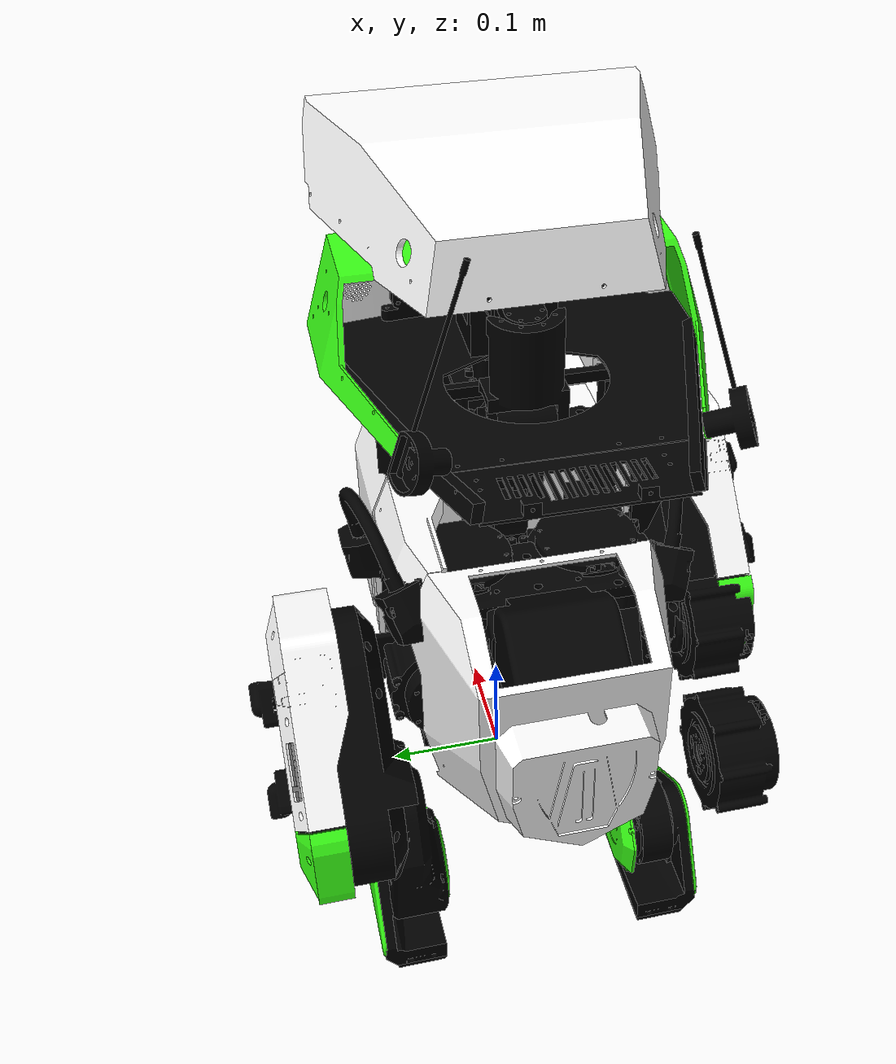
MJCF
<mujoco model="bdx-r">
  <compiler angle="radian" meshdir="meshes" autolimits="true" balanceinertia="true" />
  <default>
    <default class="bdx-r">
      <site group="5" rgba="1 0 0 1" size="0.01" />
      <default class="visual">
        <geom type="mesh" contype="0" conaffinity="0" group="2" density="0" />
      </default>
      <default class="collision">
        <geom type="capsule" group="3" material="bright_orange" contype="1" conaffinity="1" />
      </default>
    </default>
  </default>
  <asset>
    <texture type="skybox" builtin="gradient" rgb1="0.3 0.5 0.7" rgb2="0 0 0" width="512" height="512" />
    <texture name="texplane" type="2d" builtin="checker" rgb1=".2 .3 .4" rgb2=".1 0.15 0.2" width="512" height="512" mark="cross" markrgb=".8 .8 .8" />
    <material name="neon_green" rgba="0.22 1.0 0.08 1.0" />
    <material name="white" rgba="1.0 1.0 1.0 1.0" />
    <material name="black" rgba="0.0 0.0 0.0 1.0" />
    <material name="MatPlane" reflectance="0.5" texture="texplane" texrepeat="1 1" texuniform="true" />
    <material name="silver" rgba="0.75 0.75 0.75 1.0" />
    <material name="red" rgba="1 0 0 1" />
    <material name="bright_orange" rgba="1 0.65 0 0.2" />
    <mesh name="base_link" file="base_link.stl" scale="0.001 0.001 0.001" />
    <mesh name="Left_Hip_Yaw_Motor" file="Left_Hip_Yaw_Motor.stl" scale="0.001 0.001 0.001" />
    <mesh name="Right_Hip_Yaw_Motor" file="Right_Hip_Yaw_Motor.stl" scale="0.001 0.001 0.001" />
    <mesh name="Neck_Motor" file="Neck_Motor.stl" scale="0.001 0.001 0.001" />
    <mesh name="Neck" file="Neck.stl" scale="0.001 0.001 0.001" />
    <mesh name="Bottom_Cover" file="Bottom_Cover.stl" scale="0.001 0.001 0.001" />
    <mesh name="Right_Hip_Yaw_Support" file="Right_Hip_Yaw_Support.stl" scale="0.001 0.001 0.001" />
    <mesh name="Left_Hip_Yaw_Support" file="Left_Hip_Yaw_Support.stl" scale="0.001 0.001 0.001" />
    <mesh name="Base_Top_Clamp" file="Base_Top_Clamp.stl" scale="0.001 0.001 0.001" />
    <mesh name="Head_Pitch_Motor" file="Head_Pitch_Motor.stl" scale="0.001 0.001 0.001" />
    <mesh name="Left_Holder" file="Left_Holder.stl" scale="0.001 0.001 0.001" />
    <mesh name="Top_Base_Frame" file="Top_Base_Frame.stl" scale="0.001 0.001 0.001" />
    <mesh name="Head_Pitch_Motor_Support" file="Head_Pitch_Motor_Support.stl" scale="0.001 0.001 0.001" />
    <mesh name="Head_Yaw_Motor" file="Head_Yaw_Motor.stl" scale="0.001 0.001 0.001" />
    <mesh name="Head_Roll_Connector" file="Head_Roll_Connector.stl" scale="0.001 0.001 0.001" />
    <mesh name="Head_Roll_Motor" file="Head_Roll_Motor.stl" scale="0.001 0.001 0.001" />
    <mesh name="Head_Roll_Motor_Mount" file="Head_Roll_Motor_Mount.stl" scale="0.001 0.001 0.001" />
    <mesh name="Front_Support" file="Front_Support.stl" scale="0.001 0.001 0.001" />
    <mesh name="Right_Cable_Support" file="Right_Cable_Support.stl" scale="0.001 0.001 0.001" />
    <mesh name="Head_Base_Plate" file="Head_Base_Plate.stl" scale="0.001 0.001 0.001" />
    <mesh name="Right_Eye" file="Right_Eye.stl" scale="0.001 0.001 0.001" />
    <mesh name="Front_Cover" file="Front_Cover.stl" scale="0.001 0.001 0.001" />
    <mesh name="Right_Head_Support" file="Right_Head_Support.stl" scale="0.001 0.001 0.001" />
    <mesh name="Right_Front_Cover" file="Right_Front_Cover.stl" scale="0.001 0.001 0.001" />
    <mesh name="Left_Eye" file="Left_Eye.stl" scale="0.001 0.001 0.001" />
    <mesh name="Right_Holder" file="Right_Holder.stl" scale="0.001 0.001 0.001" />
    <mesh name="Left_Head_Support" file="Left_Head_Support.stl" scale="0.001 0.001 0.001" />
    <mesh name="Left_Front_Cover" file="Left_Front_Cover.stl" scale="0.001 0.001 0.001" />
    <mesh name="Battery_Holder" file="Battery_Holder.stl" scale="0.001 0.001 0.001" />
    <mesh name="Left_Cable_Support" file="Left_Cable_Support.stl" scale="0.001 0.001 0.001" />
    <mesh name="Battery" file="Battery.stl" scale="0.001 0.001 0.001" />
    <mesh name="Back_Support" file="Back_Support.stl" scale="0.001 0.001 0.001" />
    <mesh name="Rear_Cover" file="Rear_Cover.stl" scale="0.001 0.001 0.001" />
    <mesh name="Face" file="Face.stl" scale="0.001 0.001 0.001" />
    <mesh name="Left_Hip_Top_Holder" file="Left_Hip_Top_Holder.stl" scale="0.001 0.001 0.001" />
    <mesh name="Left_Hip_Roll_Motor" file="Left_Hip_Roll_Motor.stl" scale="0.001 0.001 0.001" />
    <mesh name="Left_Hip_Roll_Connector" file="Left_Hip_Roll_Connector.stl" scale="0.001 0.001 0.001" />
    <mesh name="Left_Hip_Pitch_Motor" file="Left_Hip_Pitch_Motor.stl" scale="0.001 0.001 0.001" />
    <mesh name="Left_Upper_Leg" file="Left_Upper_Leg.stl" scale="0.001 0.001 0.001" />
    <mesh name="Left_Hip_Bottom_Holder" file="Left_Hip_Bottom_Holder.stl" scale="0.001 0.001 0.001" />
    <mesh name="Left_Knee_Motor" file="Left_Knee_Motor.stl" scale="0.001 0.001 0.001" />
    <mesh name="Left_Lower_Leg" file="Left_Lower_Leg.stl" scale="0.001 0.001 0.001" />
    <mesh name="Left_Ankle_Cover" file="Left_Ankle_Cover.stl" scale="0.001 0.001 0.001" />
    <mesh name="Left_Ankle_Motor" file="Left_Ankle_Motor.stl" scale="0.001 0.001 0.001" />
    <mesh name="Left_Foot" file="Left_Foot.stl" scale="0.001 0.001 0.001" />
    <mesh name="Left_Foot_Pad" file="Left_Foot_Pad.stl" scale="0.001 0.001 0.001" />
    <mesh name="Left_Foot_Cover" file="Left_Foot_Cover.stl" scale="0.001 0.001 0.001" />
    <mesh name="Left_Upper_Leg_Cover" file="Left_Upper_Leg_Cover.stl" scale="0.001 0.001 0.001" />
    <mesh name="Left_Lower_Leg_Cover" file="Left_Lower_Leg_Cover.stl" scale="0.001 0.001 0.001" />
    <mesh name="Left_Upper_Leg_Detail" file="Left_Upper_Leg_Detail.stl" scale="0.001 0.001 0.001" />
    <mesh name="Camera_Mount" file="Camera_Mount.stl" scale="0.001 0.001 0.001" />
    <mesh name="Rear_Antenna_Box" file="Rear_Antenna_Box.stl" scale="0.001 0.001 0.001" />
    <mesh name="Right_Hip_Top_Holder" file="Right_Hip_Top_Holder.stl" scale="0.001 0.001 0.001" />
    <mesh name="Right_Hip_Roll_Motor" file="Right_Hip_Roll_Motor.stl" scale="0.001 0.001 0.001" />
    <mesh name="Right_Hip_Roll_Connector" file="Right_Hip_Roll_Connector.stl" scale="0.001 0.001 0.001" />
    <mesh name="Right_Hip_Bottom_Holder" file="Right_Hip_Bottom_Holder.stl" scale="0.001 0.001 0.001" />
    <mesh name="Right_Hip_Pitch_Motor" file="Right_Hip_Pitch_Motor.stl" scale="0.001 0.001 0.001" />
    <mesh name="Right_Upper_Leg" file="Right_Upper_Leg.stl" scale="0.001 0.001 0.001" />
    <mesh name="Right_Knee_Motor" file="Right_Knee_Motor.stl" scale="0.001 0.001 0.001" />
    <mesh name="Right_Lower_Leg" file="Right_Lower_Leg.stl" scale="0.001 0.001 0.001" />
    <mesh name="Right_Ankle_Motor" file="Right_Ankle_Motor.stl" scale="0.001 0.001 0.001" />
    <mesh name="Right_Foot" file="Right_Foot.stl" scale="0.001 0.001 0.001" />
    <mesh name="Right_Foot_Pad" file="Right_Foot_Pad.stl" scale="0.001 0.001 0.001" />
    <mesh name="Right_Foot_Cover" file="Right_Foot_Cover.stl" scale="0.001 0.001 0.001" />
    <mesh name="Right_Upper_Leg_Cover" file="Right_Upper_Leg_Cover.stl" scale="0.001 0.001 0.001" />
    <mesh name="Right_Lower_Leg_Cover" file="Right_Lower_Leg_Cover.stl" scale="0.001 0.001 0.001" />
    <mesh name="Right_Upper_Leg_Detail" file="Right_Upper_Leg_Detail.stl" scale="0.001 0.001 0.001" />
    <mesh name="Right_Ankle_Cover" file="Right_Ankle_Cover.stl" scale="0.001 0.001 0.001" />
    <mesh name="Left_Top_Cover" file="Left_Top_Cover.stl" scale="0.001 0.001 0.001" />
    <mesh name="Right_Top_Cover" file="Right_Top_Cover.stl" scale="0.001 0.001 0.001" />
    <mesh name="imu_mount" file="imu_mount.stl" scale="0.001 0.001 0.001" />
    <mesh name="imu" file="imu.stl" scale="0.001 0.001 0.001" />
    <mesh name="Orin_Nano_Case" file="Orin_Nano_Case.stl" scale="0.001 0.001 0.001" />
    <mesh name="Right_Ear_Holder" file="Right_Ear_Holder.stl" scale="0.001 0.001 0.001" />
    <mesh name="Right_Ear_Motor" file="Right_Ear_Motor.stl" scale="0.001 0.001 0.001" />
    <mesh name="Right_Ear" file="Right_Ear.stl" scale="0.001 0.001 0.001" />
    <mesh name="Left_Ear_Holder" file="Left_Ear_Holder.stl" scale="0.001 0.001 0.001" />
    <mesh name="Left_Ear_Motor" file="Left_Ear_Motor.stl" scale="0.001 0.001 0.001" />
    <mesh name="Left_Ear" file="Left_Ear.stl" scale="0.001 0.001 0.001" />
    <mesh name="Rear_Head_Cover" file="Rear_Head_Cover.stl" scale="0.001 0.001 0.001" />
    <mesh name="Rear_Head_Plate" file="Rear_Head_Plate.stl" scale="0.001 0.001 0.001" />
  </asset>
  <worldbody>
    <body name="base_link" pos="0 0 0.25" childclass="bdx-r">
      <inertial pos="0.0285257 8.41039e-06 0.0509918" mass="1.15887" fullinertia="0.005714 0.007914 0.004476 1e-05 0.000772 5e-06" />
      <geom class="visual" mesh="base_link" material="black" />
      <body name="Left_Hip_Yaw_Motor" pos="-0.032622 0.068801 0.109598">
        <inertial pos="0.0452137 -0.0187317 0.0212523" mass="0.910444" fullinertia="0.000918 0.00088 0.001215 -1e-06 1e-06 6e-06" />
        <geom class="visual" mesh="Left_Hip_Yaw_Motor" material="black" pos="0.032622 -0.068801 -0.109598" />
        <body name="Left_Hip_Top_Holder" pos="0.04527 -0.018751 -0.0025">
          <joint name="Left_Hip_Yaw" axis="0.0 0.0 1.0" range="-0.2617993877991494 0.2617993877991494" />
          <inertial pos="0.00162017 0.00319912 -0.0113672" mass="0.0821127" fullinertia="3.3e-05 3.5e-05 5.6e-05 -1e-06 3e-06 1e-06" />
          <geom class="visual" mesh="Left_Hip_Top_Holder" material="black" pos="-0.012648 -0.05005 -0.107098" />
          <body name="Left_Hip_Roll_Motor" pos="0.0155 0.031251 -0.017274">
            <inertial pos="-0.02116 -0.0187285 -0.0452265" mass="0.906987" fullinertia="0.001212 0.000876 0.000914 -6e-06 1e-06 1e-06" />
            <geom class="visual" mesh="Left_Hip_Roll_Motor" material="black" pos="-0.028148 -0.081301 -0.089824" />
            <body name="Left_Hip_Roll_Connector" pos="0.0025 -0.018751 -0.04527">
              <joint name="Left_Hip_Roll" axis="-1.0 0.0 0.0" range="-0.2617993877991494 0.3490658503988659" />
              <inertial pos="0.0023355 0.0293204 9.42159e-05" mass="0.0981459" fullinertia="0.000108 2.4e-05 0.0001 1.2e-05 0 -0" />
              <geom class="visual" mesh="Left_Hip_Roll_Connector" material="black" pos="-0.030648 -0.06255 -0.044554" />
              <body name="Left_Hip_Pitch_Motor" pos="-0.008646 0.07125 0.001341">
                <joint name="Left_Hip_Pitch" axis="0.0 -1.0 0.0" range="-1.0471975511965976 0.6981317007977318" />
                <inertial pos="5.59296e-05 0.0237521 -1.95587e-05" mass="0.910452" fullinertia="0.000918 0.001215 0.00088 -1e-06 -1e-06 -6e-06" />
                <geom class="visual" mesh="Left_Hip_Pitch_Motor" material="black" pos="-0.022002 -0.1338 -0.045895" />
                <body name="Left_Upper_Leg" pos="-0.018752 0.0025 0.04527">
                  <inertial pos="-0.0242746 0.0172653 -0.0787967" mass="0.565554" fullinertia="0.001455 0.00232 0.001546 -3.2e-05 -0.00053 -9e-06" />
                  <geom class="visual" mesh="Left_Upper_Leg" material="black" pos="-0.00325 -0.1363 -0.091165" />
                  <body name="Left_Knee_Motor" pos="-0.106013 0 -0.141269">
                    <inertial pos="0.045479 0.0212521 0.0183467" mass="0.910452" fullinertia="0.00088 0.001215 0.000918 6e-06 1e-06 -1e-06" />
                    <geom class="visual" mesh="Left_Knee_Motor" material="black" pos="0.102763 -0.1363 0.050104" />
                    <body name="Left_Lower_Leg" pos="0.045459 -0.0025 0.018291">
                      <joint name="Left_Knee" axis="0.0 1.0 0.0" range="-0.9599310885968813 1.3089969389957472" />
                      <inertial pos="0.0122832 -0.0211551 -0.0653918" mass="0.386853" fullinertia="0.00123 0.001535 0.000412 2e-05 0.000321 -6.6e-05" />
                      <geom class="visual" mesh="Left_Lower_Leg" material="black" pos="0.057304 -0.1338 0.031813" />
                      <body name="Left_Ankle_Cover" pos="0.072419 -0.045377 -0.097579">
                        <inertial pos="-0.0272704 -0.00635427 -0.0324997" mass="0.0142021" fullinertia="7e-06 1.5e-05 7e-06 -0 -0 -0" />
                        <geom class="visual" mesh="Left_Ankle_Cover" material="neon_green" pos="-0.015115 -0.088423 0.129392" />
                      </body>
                      <body name="Left_Ankle_Motor" pos="0.009131 -0.00934 -0.124166">
                        <inertial pos="0.0365342 -0.0168978 -0.00724371" mass="0.43363" fullinertia="0.000297 0.000423 0.000296 -1e-06 6e-06 -2e-06" />
                        <geom class="visual" mesh="Left_Ankle_Motor" material="black" pos="0.048173 -0.12446 0.155979" />
                        <body name="Left_Foot" pos="0.036018 0.004 -0.005913">
                          <joint name="Left_Ankle" axis="-0.0 -1.0 -0.0" range="-0.785 1.2217304763960306" />
                          <inertial pos="0.02614 -0.00466554 -0.039192" mass="0.253739" fullinertia="0.000195 0.000667 0.0006 1.9e-05 2.5e-05 -4.5e-05" />
                          <geom class="visual" mesh="Left_Foot" material="black" pos="0.012155 -0.12846 0.161892" />
                          <body name="Left_Foot_Pad" pos="0.222432 -0.025632 0.027724">
                            <inertial pos="-0.195252 0.00765129 -0.0993291" mass="0.111203" fullinertia="1.6e-05 0.000254 0.000264 0 0 -0" />
                            <geom class="visual" mesh="Left_Foot_Pad" material="black" pos="-0.210277 -0.102828 0.134168" />
                            <geom class="collision" name="left_foot_collision1" size="0.005" fromto="-0.2678 -0.0065 -0.1087  -0.1228 -0.0065 -0.1087" />
                            <geom class="collision" name="left_foot_collision2" size="0.005" fromto="-0.2628 -0.0025 -0.1087  -0.1278 -0.0025 -0.1087" />
                            <geom class="collision" name="left_foot_collision3" size="0.005" fromto="-0.2578  0.0015 -0.1087  -0.1328  0.0015 -0.1087" />
                            <geom class="collision" name="left_foot_collision4" size="0.005" fromto="-0.2578  0.0055 -0.1087  -0.1328  0.0055 -0.1087" />
                            <geom class="collision" name="left_foot_collision5" size="0.005" fromto="-0.2578  0.0095 -0.1087  -0.1328  0.0095 -0.1087" />
                            <geom class="collision" name="left_foot_collision6" size="0.005" fromto="-0.2628  0.0135 -0.1087  -0.1278  0.0135 -0.1087" />
                            <geom class="collision" name="left_foot_collision7" size="0.005" fromto="-0.2678  0.0175 -0.1087  -0.1228  0.0175 -0.1087" />
                          </body>
                          <body name="Left_Foot_Cover" pos="0.102636 0.0135 -0.048903">
                            <inertial pos="-0.053452 -0.0143058 0.0213113" mass="0.0375237" fullinertia="6.4e-05 0.000132 0.000116 2.4e-05 8e-06 5e-06" />
                            <geom class="visual" mesh="Left_Foot_Cover" material="neon_green" pos="-0.090481 -0.14196 0.210795" />
                          </body>
                          <site name="left_foot" pos="0.035 -0.025682 -0.071" size="0.01" rgba="1 0 0 1" />
                        </body>
                      </body>
                    </body>
                  </body>
                  <body name="Left_Upper_Leg_Cover" pos="0.058901 0.0465 -0.075069">
                    <inertial pos="-0.0409403 0.000936835 0.0389855" mass="0.0636117" fullinertia="9e-05 0.000296 0.000237 9e-06 -8e-06 5e-06" />
                    <geom class="visual" mesh="Left_Upper_Leg_Cover" material="white" pos="-0.062151 -0.1828 -0.016096" />
                    <body name="Left_Upper_Leg_Detail" pos="0.022141 0.011874 0.129718">
                      <inertial pos="-0.140135 -0.00116722 -0.114257" mass="0.0049676" fullinertia="1e-06 2e-06 1e-06 0 0 0" />
                      <geom class="visual" mesh="Left_Upper_Leg_Detail" pos="-0.084292 -0.194674 -0.145814" />
                    </body>
                  </body>
                  <body name="Left_Lower_Leg_Cover" pos="-0.10624 0.0465 -0.11194">
                    <inertial pos="0.0656069 -0.000288225 -0.0209171" mass="0.0918022" fullinertia="0.0001 0.000359 0.00029 9e-06 -5.3e-05 -3e-06" />
                    <geom class="visual" mesh="Left_Lower_Leg_Cover" material="neon_green" pos="0.10299 -0.1828 0.020775" />
                  </body>
                </body>
              </body>
            </body>
            <body name="Left_Hip_Bottom_Holder" pos="0 0 -0.09054">
              <inertial pos="-0.0132831 -0.0263267 -0.00296785" mass="0.060065" fullinertia="2.2e-05 2.5e-05 3.8e-05 -0 -3e-06 -0" />
              <geom class="visual" mesh="Left_Hip_Bottom_Holder" material="black" pos="-0.028148 -0.081301 0.000716" />
            </body>
          </body>
        </body>
      </body>
      <body name="Right_Hip_Yaw_Motor" pos="-0.032622 -0.068701 0.109598">
        <inertial pos="0.0453267 0.0187317 0.0212523" mass="0.910444" fullinertia="0.000918 0.00088 0.001215 -1e-06 -1e-06 -6e-06" />
        <geom class="visual" mesh="Right_Hip_Yaw_Motor" material="black" pos="0.032622 0.068701 -0.109598" />
        <body name="Right_Hip_Top_Holder" pos="0.04527 0.018751 -0.0025">
          <joint name="Right_Hip_Yaw" axis="0.0 0.0 1.0" range="-0.2617993877991494 0.2617993877991494" />
          <inertial pos="0.00162017 -0.00319911 -0.0131072" mass="0.0821127" fullinertia="3.3e-05 3.5e-05 5.6e-05 1e-06 3e-06 -1e-06" />
          <geom class="visual" mesh="Right_Hip_Top_Holder" material="black" pos="-0.012648 0.04995 -0.107098" />
          <body name="Right_Hip_Roll_Motor" pos="0.0155 0.006251 -0.019014">
            <inertial pos="-0.02116 -0.0187735 -0.0452265" mass="0.906987" fullinertia="0.001212 0.000876 0.000914 6e-06 1e-06 -1e-06" />
            <geom class="visual" mesh="Right_Hip_Roll_Motor" material="black" pos="-0.028148 0.043699 -0.088084" />
            <body name="Right_Hip_Roll_Connector" pos="0.0025 -0.018751 -0.04527">
              <joint name="Right_Hip_Roll" axis="-1.0 0.0 0.0" range="-0.3490658503988659 0.2617993877991494" />
              <inertial pos="0.0023355 -0.0293203 9.42157e-05" mass="0.0981459" fullinertia="0.000108 2.4e-05 0.0001 -1.2e-05 0 0" />
              <geom class="visual" mesh="Right_Hip_Roll_Connector" material="black" pos="-0.030648 0.06245 -0.042814" />
              <body name="Right_Hip_Pitch_Motor" pos="-0.008646 -0.07125 0.001341">
                <joint name="Right_Hip_Pitch" axis="0.0 1.0 0.0" range="-0.6981317007977318 1.0471975511965976" />
                <inertial pos="5.59947e-05 -0.0237519 -1.92588e-05" mass="0.910444" fullinertia="0.000918 0.001215 0.00088 1e-06 -1e-06 6e-06" />
                <geom class="visual" mesh="Right_Hip_Pitch_Motor" material="black" pos="-0.022002 0.1337 -0.044155" />
                <body name="Right_Upper_Leg" pos="-0.018752 -0.0025 0.04527">
                  <inertial pos="-0.024281 -0.0172422 -0.0787691" mass="0.565588" fullinertia="0.001453 0.00232 0.001545 3.1e-05 -0.00053 9e-06" />
                  <geom class="visual" mesh="Right_Upper_Leg" material="black" pos="-0.00325 0.1362 -0.089425" />
                  <body name="Right_Knee_Motor" pos="-0.078844 0 -0.07752">
                    <inertial pos="0.0183097 -0.0212519 -0.0454022" mass="0.910444" fullinertia="0.00088 0.001215 0.000918 -6e-06 1e-06 1e-06" />
                    <geom class="visual" mesh="Right_Knee_Motor" material="black" pos="0.075594 0.1362 -0.011905" />
                    <body name="Right_Lower_Leg" pos="0.01829 0.0025 -0.045458">
                      <joint name="Right_Knee" axis="-0.0 -1.0 -0.0" range="-1.3089969389957472 0.9599310885968813" />
                      <inertial pos="0.0122832 0.0211551 -0.0653918" mass="0.386853" fullinertia="0.00123 0.001535 0.000412 -2e-05 0.000321 6.6e-05" />
                      <geom class="visual" mesh="Right_Lower_Leg" material="black" pos="0.057304 0.1337 0.033553" />
                      <body name="Right_Ankle_Motor" pos="0.044717 0.00934 -0.093581">
                        <inertial pos="0.000948222 0.0168978 -0.0378287" mass="0.43363" fullinertia="0.000297 0.000423 0.000296 1e-06 6e-06 2e-06" />
                        <geom class="visual" mesh="Right_Ankle_Motor" material="black" pos="0.012587 0.12436 0.127134" />
                        <body name="Right_Foot" pos="0.000432 -0.004 -0.036498">
                          <joint name="Right_Ankle" axis="0.0 1.0 0.0" range="-1.2217304763960306 0.785" />
                          <inertial pos="0.02614 0.00466555 -0.039192" mass="0.253739" fullinertia="0.000195 0.000667 0.0006 -1.9e-05 2.5e-05 4.5e-05" />
                          <geom class="visual" mesh="Right_Foot" material="black" pos="0.012155 0.12836 0.163632" />
                          <body name="Right_Foot_Pad" pos="0.10668 0.018025 -0.059278">
                            <inertial pos="-0.0794999 4.53063e-07 -0.0123271" mass="0.111203" fullinertia="1.6e-05 0.000254 0.000264 -0 0 0" />
                            <geom class="visual" mesh="Right_Foot_Pad" material="black" pos="-0.094525 0.110335 0.22291" />
                            <geom class="collision" name="right_foot_collision1" size="0.005" fromto="-0.152  0.014 -0.02  -0.007  0.014 -0.02" />
                            <geom class="collision" name="right_foot_collision2" size="0.005" fromto="-0.147  0.01  -0.02  -0.012  0.01  -0.02" />
                            <geom class="collision" name="right_foot_collision3" size="0.005" fromto="-0.142  0.006 -0.02  -0.017  0.006 -0.02" />
                            <geom class="collision" name="right_foot_collision4" size="0.005" fromto="-0.142  0.002 -0.02  -0.017  0.002 -0.02" />
                            <geom class="collision" name="right_foot_collision5" size="0.005" fromto="-0.142 -0.002 -0.02  -0.017 -0.002 -0.02" />
                            <geom class="collision" name="right_foot_collision6" size="0.005" fromto="-0.147 -0.006 -0.02  -0.012 -0.006 -0.02" />
                            <geom class="collision" name="right_foot_collision7" size="0.005" fromto="-0.152 -0.01  -0.02  -0.007 -0.01  -0.02" />
                          </body>
                          <body name="Right_Foot_Cover" pos="-0.041752 -0.0135 -0.042544">
                            <inertial pos="0.09107 0.0144107 0.015231" mass="0.0375241" fullinertia="6.9e-05 0.000136 0.000117 -2.5e-05 7e-06 -7e-06" />
                            <geom class="visual" mesh="Right_Foot_Cover" material="neon_green" pos="0.053907 0.14186 0.206176" />
                          </body>
                          <site name="right_foot" pos="0.035 0.018025 -0.071" size="0.01" rgba="1 0 0 1" />
                        </body>
                      </body>
                      <body name="Right_Ankle_Cover" pos="0.017878 0.045377 -0.162578">
                        <inertial pos="0.0272706 0.00635428 0.0324993" mass="0.0142021" fullinertia="7e-06 1.5e-05 7e-06 0 -0 0" />
                        <geom class="visual" mesh="Right_Ankle_Cover" material="neon_green" pos="0.039426 0.088323 0.196131" />
                      </body>
                    </body>
                  </body>
                  <body name="Right_Upper_Leg_Cover" pos="0.058901 -0.0465 -0.075069">
                    <inertial pos="-0.0409403 -0.00093683 0.0389855" mass="0.0636117" fullinertia="9e-05 0.000296 0.000237 -9e-06 -8e-06 -5e-06" />
                    <geom class="visual" mesh="Right_Upper_Leg_Cover" material="white" pos="-0.062151 0.1827 -0.014356" />
                    <body name="Right_Upper_Leg_Detail" pos="0.022141 -0.011774 0.127978">
                      <inertial pos="-0.137951 0.000535076 -0.11224" mass="0.0049676" fullinertia="1e-06 2e-06 1e-06 0 0 0" />
                      <geom class="visual" mesh="Right_Upper_Leg_Detail" material="neon_green" pos="-0.084292 0.194474 -0.142334" />
                    </body>
                  </body>
                  <body name="Right_Lower_Leg_Cover" pos="-0.10624 -0.0465 -0.11194">
                    <inertial pos="0.0636909 -0.00605024 -0.0174859" mass="0.0493738" fullinertia="5.4e-05 0.000184 0.000145 -2e-06 -2.8e-05 4e-06" />
                    <geom class="visual" mesh="Right_Lower_Leg_Cover" material="neon_green" pos="0.10299 0.1827 0.022515" />
                  </body>
                </body>
              </body>
            </body>
            <body name="Right_Hip_Bottom_Holder" pos="0 0 -0.09054">
              <inertial pos="-0.0132831 -0.0111753 -0.00296785" mass="0.060065" fullinertia="2.2e-05 2.5e-05 3.8e-05 0 -3e-06 0" />
              <geom class="visual" mesh="Right_Hip_Bottom_Holder" material="black" pos="-0.028148 0.043699 0.002456" />
            </body>
          </body>
        </body>
      </body>
      <body name="Neck_Motor" pos="0.132886 -0.0164 0.129795">
        <inertial pos="-0.0308996 0.0168978 0.0207154" mass="0.429402" fullinertia="0.000296 0.000419 0.00029 -2e-06 3e-06 -1e-06" />
        <geom class="visual" mesh="Neck_Motor" material="black" pos="-0.132886 0.0164 -0.129795" />
        <body name="Neck" pos="-0.030954 -0.004 0.019342">
          <joint name="Neck_Pitch" axis="0.0 1.0 -0.0" range="-0.3490658503988659 0.8726646259971648" />
          <inertial pos="-0.0234567 0.00438569 0.0565731" mass="0.2" fullinertia="0.00022 0.00028 0.000123 1.3e-05 9.1e-05 -3.4e-05" />
          <geom class="visual" mesh="Neck" material="black" pos="-0.101932 0.0204 -0.149137" />
          <body name="Head_Pitch_Motor" pos="-0.047284 -0.00566 0.100231">
            <inertial pos="-0.017591 0.0172458 0.0112969" mass="0.214076" fullinertia="8.9e-05 7.9e-05 8.9e-05 0 -0 -1e-06" />
            <geom class="visual" mesh="Head_Pitch_Motor" material="black" pos="-0.054648 0.02606 -0.249368" />
            <body name="Head_Pitch_Motor_Support" pos="-0.017501 0 0.011149">
              <joint name="Head_Pitch" axis="0.0 1.0 0.0" range="-1.0471975511965976 0.5235987755982988" />
              <inertial pos="-0.00964845 0.013235 0.0430231" mass="0.044643" fullinertia="5e-05 4.2e-05 1.9e-05 2e-06 8e-06 -8e-06" />
              <geom class="visual" mesh="Head_Pitch_Motor_Support" material="black" pos="-0.037147 0.02606 -0.260517" />
              <body name="Head_Yaw_Motor" pos="-0.017969 0.027051 0.074557">
                <inertial pos="0.0191595 -0.00811371 -0.0172459" mass="0.214075" fullinertia="8.9e-05 9e-05 7.9e-05 -0 -0 -1e-06" />
                <geom class="visual" mesh="Head_Yaw_Motor" material="black" pos="-0.019178 -0.000991 -0.335074" />
                <body name="Head_Roll_Connector" pos="0.01917 -0.007941 0">
                  <joint name="Head_Yaw" axis="0.0 0.0 -1.0" range="-0.8726646259971648 0.8726646259971648" />
                  <inertial pos="0.0211308 -4.18231e-08 0.00296739" mass="0.026235" fullinertia="4e-06 1e-05 1e-05 -0 2e-06 0" />
                  <geom class="visual" mesh="Head_Roll_Connector" material="black" pos="-0.038348 0.00695 -0.335074" />
                  <body name="Head_Roll_Motor" pos="0.043997 0 -0.009">
                    <joint name="Head_Roll" axis="-1.0 0.0 0.0" range="-0.5235987755982988 0.5235987755982988" />
                    <inertial pos="0.0172461 -0.000172653 -1.03471e-05" mass="0.214075" fullinertia="7.9e-05 9e-05 8.9e-05 1e-06 0 -0" />
                    <geom class="visual" mesh="Head_Roll_Motor" material="black" pos="-0.082345 0.00695 -0.326074" />
                    <body name="Head_Roll_Motor_Mount" pos="0 0.01917 -0.00794">
                      <inertial pos="0.014234 -0.0200143 -0.0108146" mass="0.0606934" fullinertia="3.3e-05 2e-05 4.5e-05 0 2e-06 1e-06" />
                      <geom class="visual" mesh="Head_Roll_Motor_Mount" material="black" pos="-0.082345 -0.01222 -0.318134" />
                      <body name="Head_Base_Plate" pos="0.0021 -0.046722 -0.021495">
                        <inertial pos="-0.0314072 0.0267588 -0.000999742" mass="0.241677" fullinertia="0.001541 0.000994 0.002535 0 -0 0" />
                        <geom class="visual" mesh="Head_Base_Plate" material="black" pos="-0.084445 0.034502 -0.296639" />
                        <body name="Right_Eye" pos="0.058598 -0.056479 0">
                          <inertial pos="0.00526735 0.0221071 0.0207912" mass="0.0111037" fullinertia="5e-06 3e-06 3e-06 -0 -0 -0" />
                          <geom class="visual" mesh="Right_Eye" material="black" pos="-0.143043 0.090981 -0.296639" />
                        </body>
                        <body name="Right_Head_Support" pos="-0.123278 -0.074652 0">
                          <inertial pos="0.0116378 -0.00188178 0.00732325" mass="0.0204368" fullinertia="7e-06 6.7e-05 7.3e-05 2.1e-05 1e-06 -1e-06" />
                          <geom class="visual" mesh="Right_Head_Support" material="black" pos="0.038833 0.109154 -0.296639" />
                          <body name="Right_Front_Cover" pos="0.202885 -0.027984 0.096418">
                            <inertial pos="-0.0520371 0.0380541 -0.0481267" mass="0.0536057" fullinertia="0.000146 0.000117 0.000202 -2.8e-05 -2.9e-05 -4e-05" />
                            <geom class="visual" mesh="Right_Front_Cover" material="neon_green" pos="-0.164052 0.137138 -0.393057" />
                          </body>
                        </body>
                        <body name="Left_Eye" pos="0.058598 0.109997 0">
                          <inertial pos="0.0043063 -0.0227003 0.021499" mass="0.0107599" fullinertia="4e-06 3e-06 2e-06 0 -0 0" />
                          <geom class="visual" mesh="Left_Eye" material="black" pos="-0.143043 -0.075495 -0.296639" />
                        </body>
                        <body name="Left_Head_Support" pos="-0.027747 0.157732 0">
                          <inertial pos="-0.0838932 -0.0276796 0.00732325" mass="0.0204368" fullinertia="7e-06 6.7e-05 7.3e-05 -2.1e-05 1e-06 1e-06" />
                          <geom class="visual" mesh="Left_Head_Support" material="black" pos="-0.056698 -0.12323 -0.296639" />
                          <body name="Left_Front_Cover" pos="-0.008598 -0.001727 0.010956">
                            <inertial pos="0.0640461 -0.0398635 0.0363281" mass="0.0524757" fullinertia="0.000137 0.000114 0.000191 2.5e-05 -2.8e-05 3.8e-05" />
                            <geom class="visual" mesh="Left_Front_Cover" material="neon_green" pos="-0.0481 -0.121503 -0.307595" />
                          </body>
                          <body name="Rear_Head_Cover" pos="-0.008598 -0.001727 0.010956">
                            <inertial pos="-0.0645317 -0.129428 0.0380851" mass="0.3" fullinertia="0.001672 0.001234 0.002699 0 -0.000203 -0" />
                            <geom class="visual" mesh="Rear_Head_Cover" material="white" pos="-0.0481 -0.121503 -0.307595" />
                            <body name="Rear_Head_Plate" pos="-0.174901 -0.091107 -0.001821">
                              <inertial pos="0.0298153 -0.0383279 -0.00723612" mass="0.0147876" fullinertia="4.2e-05 6e-06 4.8e-05 -0 1e-06 -0" />
                              <geom class="visual" mesh="Rear_Head_Plate" material="black" pos="0.126801 -0.030396 -0.305774" />
                            </body>
                          </body>
                        </body>
                        <body name="Face" pos="0.052961 -0.098148 0">
                          <inertial pos="0.0119447 0.124995 0.0280089" mass="0.0365477" fullinertia="0.000279 1.7e-05 0.000264 -0 -1e-06 -0" />
                          <geom class="visual" mesh="Face" material="white" pos="-0.137406 0.13265 -0.296639" />
                        </body>
                        <body name="Right_Ear_Holder" pos="-0.142593 -0.04359 0">
                          <inertial pos="-0.00508347 0.0135661 0.0226018" mass="0.0390892" fullinertia="1.3e-05 9e-06 8e-06 -1e-06 -0 0" />
                          <geom class="visual" mesh="Right_Ear_Holder" material="black" pos="0.058148 0.078092 -0.296639" />
                          <body name="Right_Ear_Motor" pos="-0.021543 0.004139 0.045321">
                            <inertial pos="-0.0113168 0.0172458 -0.0174602" mass="0.214076" fullinertia="9e-05 7.9e-05 8.9e-05 1e-06 -0 -0" />
                            <geom class="visual" mesh="Right_Ear_Motor" material="black" pos="0.079691 0.073953 -0.34196" />
                            <body name="Right_Ear" pos="0.000669 0 -0.019584">
                              <inertial pos="-0.0132452 -0.0234204 0.00594937" mass="0.0173303" fullinertia="1e-05 8e-06 5e-06 -0 2e-06 1e-06" />
                              <geom class="visual" mesh="Right_Ear" material="black" pos="0.079022 0.073953 -0.322376" />
                            </body>
                          </body>
                        </body>
                        <body name="Left_Ear_Holder" pos="-0.142593 0.067109 0">
                          <inertial pos="-0.00510016 0.0148343 0.0226018" mass="0.0390892" fullinertia="1.3e-05 9e-06 8e-06 1e-06 -0 -0" />
                          <geom class="visual" mesh="Left_Ear_Holder" material="black" pos="0.058148 -0.032607 -0.296639" />
                          <body name="Left_Ear_Motor" pos="-0.01245 0.024261 0.032311">
                            <inertial pos="-0.0204265 -0.0172454 -0.00445018" mass="0.214076" fullinertia="9e-05 7.9e-05 8.9e-05 -1e-06 -0 0" />
                            <geom class="visual" mesh="Left_Ear_Motor" material="black" pos="0.070598 -0.056868 -0.32895" />
                            <body name="Left_Ear" pos="-0.012545 0 0.004702">
                              <inertial pos="-0.0091544 0.0233816 -0.00532896" mass="0.0173058" fullinertia="1e-05 8e-06 5e-06 0 2e-06 -1e-06" />
                              <geom class="visual" mesh="Left_Ear" material="black" pos="0.083143 -0.056868 -0.333652" />
                            </body>
                          </body>
                        </body>
                      </body>
                    </body>
                  </body>
                </body>
              </body>
            </body>
          </body>
        </body>
      </body>
      <body name="Bottom_Cover" pos="0.040668 0.06305 -0.038646">
        <inertial pos="-0.00215712 -0.063 0.000913719" mass="0.1" fullinertia="8.3e-05 9e-06 9.1e-05 -0 -0 -0" />
        <geom class="visual" mesh="Bottom_Cover" material="white" pos="-0.040668 -0.06305 0.038646" />
      </body>
      <body name="Right_Hip_Yaw_Support" pos="0.070648 -0.0177 0.088154">
        <inertial pos="-0.00233655 -0.0297011 -0.00579523" mass="0.110967" fullinertia="6.5e-05 4.4e-05 4.5e-05 -1e-06 5e-06 1e-06" />
        <geom class="visual" mesh="Right_Hip_Yaw_Support" material="black" pos="-0.070648 0.0177 -0.088154" />
      </body>
      <body name="Left_Hip_Yaw_Support" pos="0.070648 0.0178 0.088154">
        <inertial pos="-0.00240657 0.0297873 -0.00598472" mass="0.107881" fullinertia="6.3e-05 4.2e-05 4.4e-05 1e-06 5e-06 -2e-06" />
        <geom class="visual" mesh="Left_Hip_Yaw_Support" material="black" pos="-0.070648 -0.0178 -0.088154" />
      </body>
      <body name="Base_Top_Clamp" pos="-0.041248 -0.05995 0.148898">
        <inertial pos="0.0115715 0.06 0.00483101" mass="0.0462886" fullinertia="6.4e-05 1.2e-05 7.5e-05 0 -0 -0" />
        <geom class="visual" mesh="Base_Top_Clamp" material="black" pos="0.041248 0.05995 -0.148898" />
        <body name="imu_mount" pos="0.008626 0.091249 0.01">
          <inertial pos="0.0455002 -0.031249 0.00964534" mass="0.05" fullinertia="1.5e-05 2.1e-05 3.4e-05 0 2e-06 0" />
          <geom class="visual" mesh="imu_mount" material="black" pos="0.032622 -0.031299 -0.158898" />
          <body name="imu" pos="0.00865 -0.010349 0.015">
            <inertial pos="0.00758057 -0.0209 0.0136918" mass="0.1" fullinertia="3e-06 2e-06 3e-06 0 -0 -0" />
            <geom class="visual" mesh="imu" material="black" pos="0.023972 -0.02095 -0.173898" />
          </body>
          <site name="imu" size="0.01" pos="0.05 -0.03 0.02" />
        </body>
      </body>
      <body name="Left_Holder" pos="-0.042349 0.091047 0.150304">
        <inertial pos="0.0654654 0.0202797 9.29671e-05" mass="0.0360922" fullinertia="3.2e-05 0.000147 0.000124 -1.7e-05 2.9e-05 1e-06" />
        <geom class="visual" mesh="Left_Holder" material="black" pos="0.042349 -0.091047 -0.150304" />
      </body>
      <body name="Top_Base_Frame" pos="-0.032533 0.084396 0.175919">
        <inertial pos="0.0876581 -0.084346 0.00853271" mass="0.119509" fullinertia="0.00068 0.000477 0.001154 0 -5e-06 0" />
        <geom class="visual" mesh="Top_Base_Frame" material="black" pos="0.032533 -0.084396 -0.175919" />
        <body name="Left_Top_Cover" pos="0.100005 0.014043 -0.004554">
          <inertial pos="-0.044107 -0.0100958 0.000433821" mass="0.0292609" fullinertia="1.9e-05 4.6e-05 4.1e-05 0 1e-06 6e-06" />
          <geom class="visual" mesh="Left_Top_Cover" material="white" pos="-0.067472 -0.098439 -0.171365" />
        </body>
        <body name="Right_Top_Cover" pos="0.100005 -0.182735 -0.004554">
          <inertial pos="-0.044107 0.0100958 0.000433821" mass="0.0292609" fullinertia="1.9e-05 4.6e-05 4.1e-05 -0 1e-06 -6e-06" />
          <geom class="visual" mesh="Right_Top_Cover" material="white" pos="-0.067472 0.098339 -0.171365" />
        </body>
      </body>
      <body name="Front_Support" pos="0.104552 0.01005 0.079856">
        <inertial pos="0.00267539 -0.01 -0.0165269" mass="0.184244" fullinertia="0.001929 0.000901 0.001041 0 1.1e-05 0" />
        <geom class="visual" mesh="Front_Support" material="black" pos="-0.104552 -0.01005 -0.079856" />
        <body name="Right_Cable_Support" pos="0 -0.102343 0.035039">
          <inertial pos="-0.00464424 0.0120877 -0.00294295" mass="0.0552747" fullinertia="1.5e-05 1.6e-05 1.7e-05 -2e-06 1e-06 0" />
          <geom class="visual" mesh="Right_Cable_Support" material="black" pos="-0.104552 0.092293 -0.114895" />
        </body>
        <body name="Front_Cover" pos="0.004894 -0.112243 -0.028496">
          <inertial pos="0.0350759 0.102434 0.0289549" mass="0.31919" fullinertia="0.004028 0.002471 0.002125 0 -8e-05 -0" />
          <geom class="visual" mesh="Front_Cover" material="white" pos="-0.109446 0.102193 -0.05136" />
          <body name="Camera_Mount" pos="0.177343 0.156643 0.186285">
            <inertial pos="-0.121925 -0.0515759 -0.114601" mass="0.032111" fullinertia="5.1e-05 1.6e-05 4.1e-05 -0 -1e-06 -0" />
            <geom class="visual" mesh="Camera_Mount" material="black" pos="-0.286789 -0.05445 -0.237645" />
          </body>
        </body>
        <body name="Left_Cable_Support" pos="0 0.082343 0.035039">
          <inertial pos="-0.00464424 -0.0120877 -0.00294295" mass="0.0552747" fullinertia="1.5e-05 1.6e-05 1.7e-05 2e-06 1e-06 -0" />
          <geom class="visual" mesh="Left_Cable_Support" material="black" pos="-0.104552 -0.092393 -0.114895" />
        </body>
        <body name="Orin_Nano_Case" pos="0.01 -0.02 0">
          <inertial pos="0.029169 -0.00680733 -0.0560365" mass="0.5" fullinertia="0.000811 0.000527 0.000367 -1.4e-05 2e-06 1.6e-05" />
          <geom class="visual" mesh="Orin_Nano_Case" material="black" pos="-0.114552 0.00995 -0.079856" />
        </body>
      </body>
      <body name="Right_Holder" pos="-0.042349 -0.090947 0.150304">
        <inertial pos="0.0661003 -0.0203252 -0.000478187" mass="0.0361128" fullinertia="3.2e-05 0.000147 0.000124 1.7e-05 2.9e-05 -1e-06" />
        <geom class="visual" mesh="Right_Holder" material="black" pos="0.042349 0.090947 -0.150304" />
      </body>
      <body name="Battery_Holder" pos="-0.042025 5e-05 0.002134">
        <inertial pos="-0.0112596 -1.37984e-08 0.0742143" mass="0.162092" fullinertia="0.000431 0.000313 0.000128 -0 1e-05 -0" />
        <geom class="visual" mesh="Battery_Holder" material="black" pos="0.042025 -5e-05 -0.002134" />
        <body name="Battery" pos="0.091613 -0.02775 0.230592">
          <inertial pos="-0.147625 0.02745 -0.131786" mass="1.07309" fullinertia="0.002821 0.002743 0.001123 -0 -3.4e-05 0" />
          <geom class="visual" mesh="Battery" material="black" pos="-0.049588 0.0277 -0.232726" />
        </body>
        <body name="Back_Support" pos="-0.018024 0 0">
          <inertial pos="-0.0161042 0.00083864 0.0763859" mass="0.198185" fullinertia="0.000997 0.00052 0.000641 1e-06 5.1e-05 -4e-06" />
          <geom class="visual" mesh="Back_Support" material="black" pos="0.060049 -5e-05 -0.002134" />
          <body name="Rear_Cover" pos="0.005701 -0.014557 -0.031856">
            <inertial pos="-0.0379426 0.0154429 0.0814396" mass="0.318197" fullinertia="0.00246 0.001841 0.001533 0 0.000357 -0" />
            <geom class="visual" mesh="Rear_Cover" material="white" pos="0.054348 0.014507 0.029722" />
            <body name="Rear_Antenna_Box" pos="-0.089906 -0.033615 0.123682">
              <inertial pos="-0.0226373 0.0495508 -0.00812351" mass="0.0411709" fullinertia="9.7e-05 4.9e-05 5.6e-05 -0 1e-06 -0" />
              <geom class="visual" mesh="Rear_Antenna_Box" material="white" pos="0.144254 0.048122 -0.09396" />
            </body>
          </body>
        </body>
      </body>
      <freejoint />
      <geom class="collision" name="base_collision" size="0.12" fromto="-0.09 0 0.07 0.09 0 0.07" />
    </body>
  </worldbody>
  <sensor>
    <gyro name="imu_ang_vel" site="imu" />
    <velocimeter name="imu_lin_vel" site="imu" />
    <accelerometer name="imu_lin_acc" site="imu" />
    <subtreeangmom name="root_angmom" body="base_link" />
  </sensor>
</mujoco>
